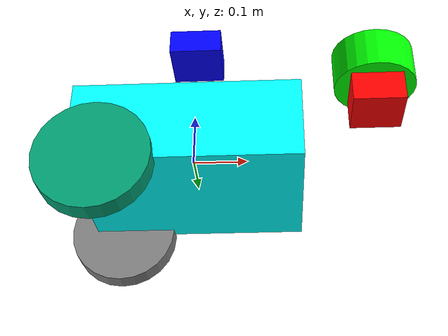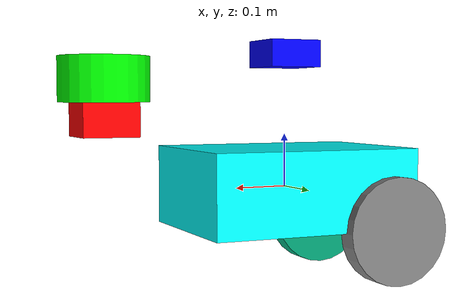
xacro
<?xml version="1.0"?>
<robot name="dif_bot" xmlns:xacro="http://www.ros.org/wiki/xacro">

  <!-- PROPIEDADES GENERALES -->
  <xacro:property name="base_length" value="0.4"/>
  <xacro:property name="base_width"  value="0.3"/>
  <xacro:property name="base_height" value="0.15"/>

  <xacro:property name="wheel_radius" value="0.1"/>
  <xacro:property name="wheel_width"  value="0.04"/>

  <!-- BASE LINK -->
  <link name="base_link">

    <!-- VISUAL -->
    <visual>
      <geometry>
        <box size="${base_length} ${base_width} ${base_height}"/>
      </geometry>
      <material name="cyan">
        <color rgba="0.0 1.0 1.0 1.0"/>
      </material>
    </visual>

    <!-- COLISION -->
    <collision>
      <geometry>
        <box size="${base_length} ${base_width} ${base_height}"/>
      </geometry>
    </collision>

    <!-- INERCIA -->
    <inertial>
      <origin xyz="0 0 0"/>
      <mass value="10.0"/>
      <inertia
        ixx="0.2" ixy="0.0" ixz="0.0"
        iyy="0.2" iyz="0.0"
        izz="0.2"/>
    </inertial>

  </link>

  <!-- RUEDA IZQUIERDA -->
  <link name="left_wheel">

    <visual>
      <geometry>
        <cylinder radius="${wheel_radius}" length="${wheel_width}"/>
      </geometry>
      <material name="gray">
        <color rgba="0.5 0.5 0.5 1.0"/>
      </material>
    </visual>

    <collision>
      <geometry>
        <cylinder radius="${wheel_radius}" length="${wheel_width}"/>
      </geometry>
    </collision>

    <inertial>
      <origin xyz="0 0 0"/>
      <mass value="0.5"/>
      <inertia
        ixx="0.01" ixy="0.0" ixz="0.0"
        iyy="0.01" iyz="0.0"
        izz="0.01"/>
    </inertial>

  </link>

  <joint name="left_wheel_joint" type="continuous">
    <parent link="base_link"/>
    <child link="left_wheel"/>
    <origin xyz="-0.15 0.15 -0.075" rpy="1.5708 0 0"/>
    <axis xyz="0 1 0"/>
  </joint>

  <!-- RUEDA DERECHA -->
  <link name="right_wheel">

    <visual>
      <geometry>
        <cylinder radius="${wheel_radius}" length="${wheel_width}"/>
      </geometry>
    </visual>

    <collision>
      <geometry>
        <cylinder radius="${wheel_radius}" length="${wheel_width}"/>
      </geometry>
    </collision>

    <inertial>
      <origin xyz="0 0 0"/>
      <mass value="0.5"/>
      <inertia
        ixx="0.01" ixy="0.0" ixz="0.0"
        iyy="0.01" iyz="0.0"
        izz="0.01"/>
    </inertial>

  </link>

  <joint name="right_wheel_joint" type="continuous">
    <parent link="base_link"/>
    <child link="right_wheel"/>
    <origin xyz="-0.15 -0.15 -0.075" rpy="1.5708 0 0"/>
    <axis xyz="0 1 0"/>
  </joint>
  <!-- SENSOR: CAMARA -->
  <link name="camera_link">

    <visual>
      <geometry>
        <box size="0.1 0.1 0.1"/>
      </geometry>
      <material name="red">
        <color rgba="1 0 0 1"/>
      </material>
    </visual>

    <collision>
      <geometry>
        <box size="0.05 0.05 0.03"/>
      </geometry>
    </collision>

    <inertial>
      <mass value="0.1"/>
      <inertia
        ixx="0.0001" ixy="0.0" ixz="0.0"
        iyy="0.0001" iyz="0.0"
        izz="0.0001"/>
    </inertial>

  </link>

  <joint name="camera_joint" type="fixed">
    <parent link="base_link"/>
    <child link="camera_link"/>
    <origin xyz="0.35 0 0.15" rpy="0 0 0"/>
  </joint>
<!-- SENSOR: IMU (VISIBLE) -->
<link name="imu_link">
  <visual>
    <geometry>
      <box size="0.10 0.10 0.05"/>
    </geometry>
    <material name="blue">
      <color rgba="0 0 1 1"/>
    </material>
  </visual>
  <collision>
    <geometry>
      <box size="0.10 0.10 0.05"/>
    </geometry>
  </collision>
</link>

<joint name="imu_joint" type="fixed">
  <parent link="base_link"/>
  <child link="imu_link"/>
  <!-- MUY ARRIBA DEL CHASIS -->
  <origin xyz="0.0 0.0 0.25" rpy="0 0 0"/>
</joint>
<!-- SENSOR: LIDAR (VISIBLE) -->
<link name="lidar_link">
  <visual>
    <geometry>
      <cylinder radius="0.08" length="0.08"/>
    </geometry>
    <material name="green">
      <color rgba="0 1 0 1"/>
    </material>
  </visual>
  <collision>
    <geometry>
      <cylinder radius="0.08" length="0.08"/>
    </geometry>
  </collision>
</link>

<joint name="lidar_joint" type="fixed">
  <parent link="base_link"/>
  <child link="lidar_link"/>
  <!-- CLARAMENTE FUERA DEL CHASIS -->
  <origin xyz="0.35 0.0 0.20" rpy="0 0 0"/>
</joint>
</robot>
